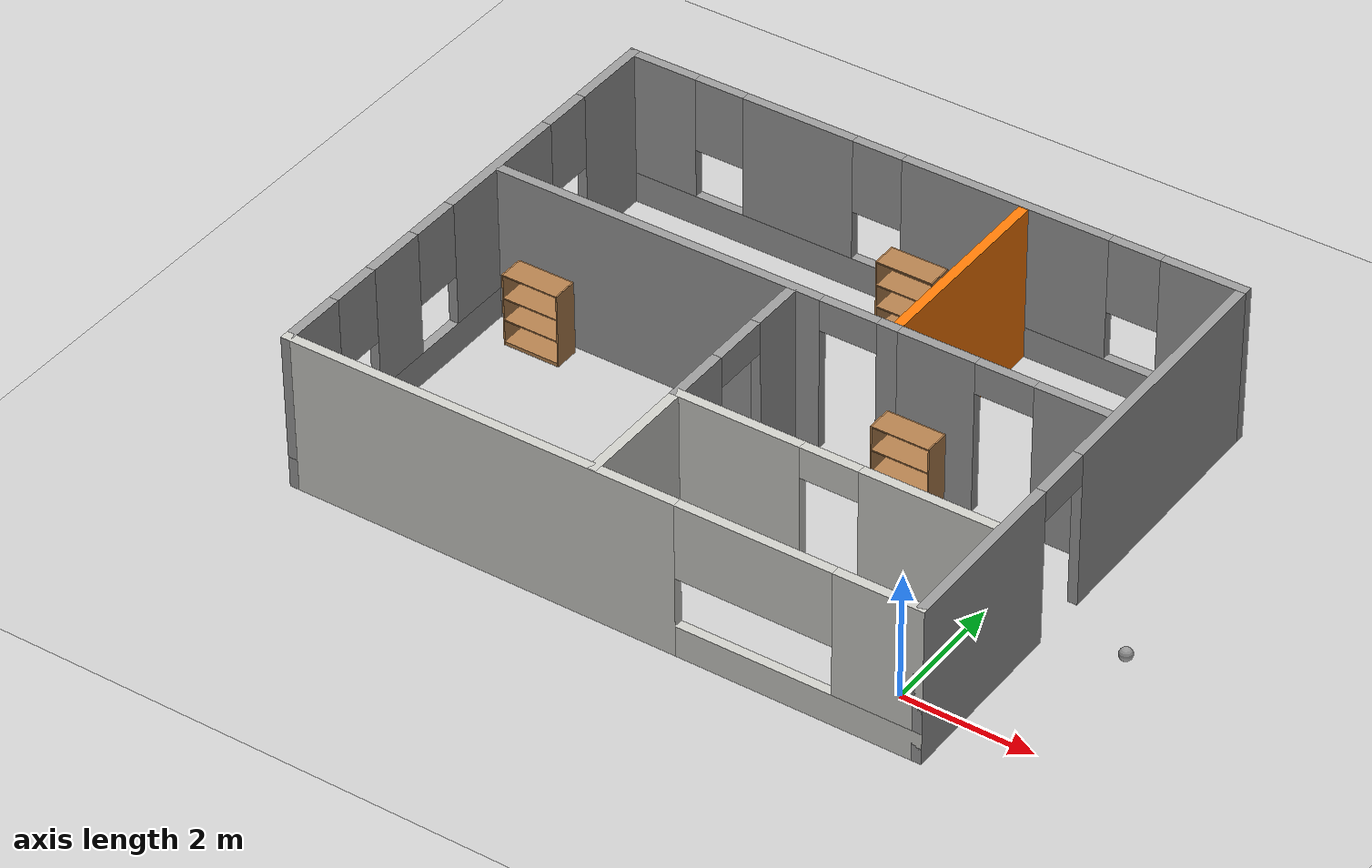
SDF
<sdf version="1.6">
 <world name="default">
  <plugin name="hello" filename="libhello.so"/>
  <gravity>0 0 -9.8</gravity>
  <magnetic_field>6e-06 2.3e-05 -4.2e-05</magnetic_field>
  <atmosphere type="adiabatic"/>
  <physics name="default_physics" default="0" type="ode">
   <max_step_size>0.001</max_step_size>
   <real_time_factor>1</real_time_factor>
   <real_time_update_rate>1000</real_time_update_rate>
  </physics>
  <scene><ambient>0.4 0.4 0.4 1</ambient><background>0.7 0.7 0.7 1</background><shadows>1</shadows></scene>
  <spherical_coordinates>
   <surface_model>EARTH_WGS84</surface_model>
   <latitude_deg>0</latitude_deg>
   <longitude_deg>0</longitude_deg>
   <elevation>0</elevation>
   <heading_deg>0</heading_deg>
  </spherical_coordinates>
  <model name="Hause">
   <pose>-4.0754 3.03863 0 0 -0 0</pose>
   <link name="Wall_11">
    <pose>-1.61949 0.663584 0 0 -0 3.14159</pose>
    <visual name="Wall_11_Visual_0">
     <pose>-3.08857 0 1.25 0 -0 0</pose>
     <geometry><box><size>0.322856 0.15 2.5</size></box></geometry>
     <material>
      <script><uri>file://media/materials/scripts/gazebo.material</uri><name>Gazebo/Grey</name></script>
      <ambient>1 1 1 1</ambient>
     </material>
     <meta><layer>0</layer></meta>
    </visual>
    <collision name="Wall_11_Collision_0">
     <geometry><box><size>0.322856 0.15 2.5</size></box></geometry>
     <pose>-3.08857 0 1.25 0 -0 0</pose>
    </collision>
    <visual name="Wall_11_Visual_1">
     <pose>0.611428 0 1.25 0 -0 0</pose>
     <geometry><box><size>5.27714 0.15 2.5</size></box></geometry>
     <material>
      <script><uri>file://media/materials/scripts/gazebo.material</uri><name>Gazebo/Grey</name></script>
      <ambient>1 1 1 1</ambient>
     </material>
     <meta><layer>0</layer></meta>
    </visual>
    <collision name="Wall_11_Collision_1">
     <geometry><box><size>5.27714 0.15 2.5</size></box></geometry>
     <pose>0.611428 0 1.25 0 -0 0</pose>
    </collision>
    <visual name="Wall_11_Visual_2">
     <pose>-2.47714 0 2.25 0 -0 0</pose>
     <geometry><box><size>0.9 0.15 0.5</size></box></geometry>
     <material>
      <script><uri>file://media/materials/scripts/gazebo.material</uri><name>Gazebo/Grey</name></script>
      <ambient>1 1 1 1</ambient>
     </material>
     <meta><layer>0</layer></meta>
    </visual>
    <collision name="Wall_11_Collision_2">
     <geometry><box><size>0.9 0.15 0.5</size></box></geometry>
     <pose>-2.47714 0 2.25 0 -0 0</pose>
    </collision>
   </link>
   <link name="Wall_13">
    <pose>2.38799 -2.06583 0 0 -0 3.14159</pose>
    <visual name="Wall_13_Visual_0">
     <pose>-1.46158 0 1.25 0 -0 0</pose>
     <geometry><box><size>2.07685 0.15 2.5</size></box></geometry>
     <material>
      <script><uri>file://media/materials/scripts/gazebo.material</uri><name>Gazebo/CeilingTiled</name></script>
      <ambient>1 1 1 1</ambient>
     </material>
     <meta><layer>0</layer></meta>
    </visual>
    <collision name="Wall_13_Collision_0">
     <geometry><box><size>2.07685 0.15 2.5</size></box></geometry>
     <pose>-1.46158 0 1.25 0 -0 0</pose>
    </collision>
    <visual name="Wall_13_Visual_1">
     <pose>1.48842 0 1.25 0 -0 0</pose>
     <geometry><box><size>2.02316 0.15 2.5</size></box></geometry>
     <material>
      <script><uri>file://media/materials/scripts/gazebo.material</uri><name>Gazebo/CeilingTiled</name></script>
      <ambient>1 1 1 1</ambient>
     </material>
     <meta><layer>0</layer></meta>
    </visual>
    <collision name="Wall_13_Collision_1">
     <geometry><box><size>2.02316 0.15 2.5</size></box></geometry>
     <pose>1.48842 0 1.25 0 -0 0</pose>
    </collision>
    <visual name="Wall_13_Visual_2">
     <pose>0.026845 0 2.25 0 -0 0</pose>
     <geometry><box><size>0.9 0.15 0.5</size></box></geometry>
     <material>
      <script><uri>file://media/materials/scripts/gazebo.material</uri><name>Gazebo/CeilingTiled</name></script>
      <ambient>1 1 1 1</ambient>
     </material>
     <meta><layer>0</layer></meta>
    </visual>
    <collision name="Wall_13_Collision_2">
     <geometry><box><size>0.9 0.15 0.5</size></box></geometry>
     <pose>0.026845 0 2.25 0 -0 0</pose>
    </collision>
   </link>
   <link name="Wall_14">
    <collision name="Wall_14_Collision">
     <geometry><box><size>2 0.15 2.5</size></box></geometry>
     <pose>0 0 1.25 0 -0 0</pose>
    </collision>
    <visual name="Wall_14_Visual">
     <pose>0 0 1.25 0 -0 0</pose>
     <geometry><box><size>2 0.15 2.5</size></box></geometry>
     <material>
      <script><uri>file://media/materials/scripts/gazebo.material</uri><name>Gazebo/CeilingTiled</name></script>
      <ambient>1 1 1 1</ambient>
     </material>
     <meta><layer>0</layer></meta>
    </visual>
    <pose>-0.037014 -2.99083 0 0 0 -1.5708</pose>
   </link>
   <link name="Wall_16">
    <pose>-0.037014 -0.765827 0 0 -0 1.5708</pose>
    <visual name="Wall_16_Visual_0">
     <pose>-0.880147 0 1.25 0 -0 0</pose>
     <geometry><box><size>0.989706 0.15 2.5</size></box></geometry>
     <material>
      <script><uri>file://media/materials/scripts/gazebo.material</uri><name>Gazebo/Grey</name></script>
      <ambient>1 1 1 1</ambient>
     </material>
     <meta><layer>0</layer></meta>
    </visual>
    <collision name="Wall_16_Collision_0">
     <geometry><box><size>0.989706 0.15 2.5</size></box></geometry>
     <pose>-0.880147 0 1.25 0 -0 0</pose>
    </collision>
    <visual name="Wall_16_Visual_1">
     <pose>0.944853 0 1.25 0 -0 0</pose>
     <geometry><box><size>0.860294 0.15 2.5</size></box></geometry>
     <material>
      <script><uri>file://media/materials/scripts/gazebo.material</uri><name>Gazebo/Grey</name></script>
      <ambient>1 1 1 1</ambient>
     </material>
     <meta><layer>0</layer></meta>
    </visual>
    <collision name="Wall_16_Collision_1">
     <geometry><box><size>0.860294 0.15 2.5</size></box></geometry>
     <pose>0.944853 0 1.25 0 -0 0</pose>
    </collision>
    <visual name="Wall_16_Visual_2">
     <pose>0.064706 0 2.25 0 -0 0</pose>
     <geometry><box><size>0.9 0.15 0.5</size></box></geometry>
     <material>
      <script><uri>file://media/materials/scripts/gazebo.material</uri><name>Gazebo/Grey</name></script>
      <ambient>1 1 1 1</ambient>
     </material>
     <meta><layer>0</layer></meta>
    </visual>
    <collision name="Wall_16_Collision_2">
     <geometry><box><size>0.9 0.15 0.5</size></box></geometry>
     <pose>0.064706 0 2.25 0 -0 0</pose>
    </collision>
   </link>
   <link name="Wall_3">
    <pose>-4.925 0 0 0 0 -1.5708</pose>
    <visual name="Wall_3_Visual_0">
     <pose>-3.3298 0 1.25 0 -0 0</pose>
     <geometry><box><size>1.3404 0.15 2.5</size></box></geometry>
     <material>
      <script><uri>file://media/materials/scripts/gazebo.material</uri><name>Gazebo/Grey</name></script>
      <ambient>1 1 1 1</ambient>
     </material>
     <meta><layer>0</layer></meta>
    </visual>
    <collision name="Wall_3_Collision_0">
     <geometry><box><size>1.3404 0.15 2.5</size></box></geometry>
     <pose>-3.3298 0 1.25 0 -0 0</pose>
    </collision>
    <visual name="Wall_3_Visual_1">
     <pose>0.670202 0 0.25 0 -0 0</pose>
     <geometry><box><size>6.6596 0.15 0.5</size></box></geometry>
     <material>
      <script><uri>file://media/materials/scripts/gazebo.material</uri><name>Gazebo/Grey</name></script>
      <ambient>1 1 1 1</ambient>
     </material>
     <meta><layer>0</layer></meta>
    </visual>
    <collision name="Wall_3_Collision_1">
     <geometry><box><size>6.6596 0.15 0.5</size></box></geometry>
     <pose>0.670202 0 0.25 0 -0 0</pose>
    </collision>
    <visual name="Wall_3_Visual_2">
     <pose>-0.732976 0 1.5 0 -0 0</pose>
     <geometry><box><size>2.25324 0.15 2</size></box></geometry>
     <material>
      <script><uri>file://media/materials/scripts/gazebo.material</uri><name>Gazebo/Grey</name></script>
      <ambient>1 1 1 1</ambient>
     </material>
     <meta><layer>0</layer></meta>
    </visual>
    <collision name="Wall_3_Collision_2">
     <geometry><box><size>2.25324 0.15 2</size></box></geometry>
     <pose>-0.732976 0 1.5 0 -0 0</pose>
    </collision>
    <visual name="Wall_3_Visual_3">
     <pose>1.67261 0 1.5 0 -0 0</pose>
     <geometry><box><size>0.957926 0.15 2</size></box></geometry>
     <material>
      <script><uri>file://media/materials/scripts/gazebo.material</uri><name>Gazebo/Grey</name></script>
      <ambient>1 1 1 1</ambient>
     </material>
     <meta><layer>0</layer></meta>
    </visual>
    <collision name="Wall_3_Collision_3">
     <geometry><box><size>0.957926 0.15 2</size></box></geometry>
     <pose>1.67261 0 1.5 0 -0 0</pose>
    </collision>
    <visual name="Wall_3_Visual_4">
     <pose>3.47579 0 1.5 0 -0 0</pose>
     <geometry><box><size>1.04843 0.15 2</size></box></geometry>
     <material>
      <script><uri>file://media/materials/scripts/gazebo.material</uri><name>Gazebo/Grey</name></script>
      <ambient>1 1 1 1</ambient>
     </material>
     <meta><layer>0</layer></meta>
    </visual>
    <collision name="Wall_3_Collision_4">
     <geometry><box><size>1.04843 0.15 2</size></box></geometry>
     <pose>3.47579 0 1.5 0 -0 0</pose>
    </collision>
    <visual name="Wall_3_Visual_5">
     <pose>-2.2596 0 1.9 0 -0 0</pose>
     <geometry><box><size>0.8 0.15 1.2</size></box></geometry>
     <material>
      <script><uri>file://media/materials/scripts/gazebo.material</uri><name>Gazebo/Grey</name></script>
      <ambient>1 1 1 1</ambient>
     </material>
     <meta><layer>0</layer></meta>
    </visual>
    <collision name="Wall_3_Collision_5">
     <geometry><box><size>0.8 0.15 1.2</size></box></geometry>
     <pose>-2.2596 0 1.9 0 -0 0</pose>
    </collision>
    <visual name="Wall_3_Visual_6">
     <pose>0.793644 0 1.9 0 -0 0</pose>
     <geometry><box><size>0.8 0.15 1.2</size></box></geometry>
     <material>
      <script><uri>file://media/materials/scripts/gazebo.material</uri><name>Gazebo/Grey</name></script>
      <ambient>1 1 1 1</ambient>
     </material>
     <meta><layer>0</layer></meta>
    </visual>
    <collision name="Wall_3_Collision_6">
     <geometry><box><size>0.8 0.15 1.2</size></box></geometry>
     <pose>0.793644 0 1.9 0 -0 0</pose>
    </collision>
    <visual name="Wall_3_Visual_7">
     <pose>2.55157 0 1.9 0 -0 0</pose>
     <geometry><box><size>0.8 0.15 1.2</size></box></geometry>
     <material>
      <script><uri>file://media/materials/scripts/gazebo.material</uri><name>Gazebo/Grey</name></script>
      <ambient>1 1 1 1</ambient>
     </material>
     <meta><layer>0</layer></meta>
    </visual>
    <collision name="Wall_3_Collision_7">
     <geometry><box><size>0.8 0.15 1.2</size></box></geometry>
     <pose>2.55157 0 1.9 0 -0 0</pose>
    </collision>
   </link>
   <link name="Wall_4">
    <pose>1e-06 -3.925 0 0 -0 0</pose>
    <visual name="Wall_4_Visual_0">
     <pose>-1.87795 0 1.25 0 -0 0</pose>
     <geometry><box><size>6.24409 0.15 2.5</size></box></geometry>
     <material>
      <script><uri>file://media/materials/scripts/gazebo.material</uri><name>Gazebo/CeilingTiled</name></script>
      <ambient>1 1 1 1</ambient>
     </material>
     <meta><layer>0</layer></meta>
    </visual>
    <collision name="Wall_4_Collision_0">
     <geometry><box><size>6.24409 0.15 2.5</size></box></geometry>
     <pose>-1.87795 0 1.25 0 -0 0</pose>
    </collision>
    <visual name="Wall_4_Visual_1">
     <pose>3.12205 0 0.25 0 -0 0</pose>
     <geometry><box><size>3.75591 0.15 0.5</size></box></geometry>
     <material>
      <script><uri>file://media/materials/scripts/gazebo.material</uri><name>Gazebo/CeilingTiled</name></script>
      <ambient>1 1 1 1</ambient>
     </material>
     <meta><layer>0</layer></meta>
    </visual>
    <collision name="Wall_4_Collision_1">
     <geometry><box><size>3.75591 0.15 0.5</size></box></geometry>
     <pose>3.12205 0 0.25 0 -0 0</pose>
    </collision>
    <visual name="Wall_4_Visual_2">
     <pose>4.32005 0 1.5 0 -0 0</pose>
     <geometry><box><size>1.3599 0.15 2</size></box></geometry>
     <material>
      <script><uri>file://media/materials/scripts/gazebo.material</uri><name>Gazebo/CeilingTiled</name></script>
      <ambient>1 1 1 1</ambient>
     </material>
     <meta><layer>0</layer></meta>
    </visual>
    <collision name="Wall_4_Collision_2">
     <geometry><box><size>1.3599 0.15 2</size></box></geometry>
     <pose>4.32005 0 1.5 0 -0 0</pose>
    </collision>
    <visual name="Wall_4_Visual_3">
     <pose>2.4421 0 1.9 0 -0 0</pose>
     <geometry><box><size>2.39601 0.15 1.2</size></box></geometry>
     <material>
      <script><uri>file://media/materials/scripts/gazebo.material</uri><name>Gazebo/CeilingTiled</name></script>
      <ambient>1 1 1 1</ambient>
     </material>
     <meta><layer>0</layer></meta>
    </visual>
    <collision name="Wall_4_Collision_3">
     <geometry><box><size>2.39601 0.15 1.2</size></box></geometry>
     <pose>2.4421 0 1.9 0 -0 0</pose>
    </collision>
   </link>
   <link name="Wall_5">
    <pose>4.925 0 0 0 -0 1.5708</pose>
    <visual name="Wall_5_Visual_0">
     <pose>-2.57556 0 1.25 0 -0 0</pose>
     <geometry><box><size>2.84888 0.15 2.5</size></box></geometry>
     <material>
      <script><uri>file://media/materials/scripts/gazebo.material</uri><name>Gazebo/Grey</name></script>
      <ambient>1 1 1 1</ambient>
     </material>
     <meta><layer>0</layer></meta>
    </visual>
    <collision name="Wall_5_Collision_0">
     <geometry><box><size>2.84888 0.15 2.5</size></box></geometry>
     <pose>-2.57556 0 1.25 0 -0 0</pose>
    </collision>
    <visual name="Wall_5_Visual_1">
     <pose>1.87444 0 1.25 0 -0 0</pose>
     <geometry><box><size>4.25112 0.15 2.5</size></box></geometry>
     <material>
      <script><uri>file://media/materials/scripts/gazebo.material</uri><name>Gazebo/Grey</name></script>
      <ambient>1 1 1 1</ambient>
     </material>
     <meta><layer>0</layer></meta>
    </visual>
    <collision name="Wall_5_Collision_1">
     <geometry><box><size>4.25112 0.15 2.5</size></box></geometry>
     <pose>1.87444 0 1.25 0 -0 0</pose>
    </collision>
    <visual name="Wall_5_Visual_2">
     <pose>-0.701122 0 2.25 0 -0 0</pose>
     <geometry><box><size>0.9 0.15 0.5</size></box></geometry>
     <material>
      <script><uri>file://media/materials/scripts/gazebo.material</uri><name>Gazebo/Grey</name></script>
      <ambient>1 1 1 1</ambient>
     </material>
     <meta><layer>0</layer></meta>
    </visual>
    <collision name="Wall_5_Collision_2">
     <geometry><box><size>0.9 0.15 0.5</size></box></geometry>
     <pose>-0.701122 0 2.25 0 -0 0</pose>
    </collision>
   </link>
   <link name="Wall_6">
    <pose>1e-06 3.925 0 0 -0 3.14159</pose>
    <visual name="Wall_6_Visual_0">
     <pose>-4.34318 0 1.25 0 -0 0</pose>
     <geometry><box><size>1.31363 0.15 2.5</size></box></geometry>
     <material>
      <script><uri>file://media/materials/scripts/gazebo.material</uri><name>Gazebo/Grey</name></script>
      <ambient>1 1 1 1</ambient>
     </material>
     <meta><layer>0</layer></meta>
    </visual>
    <collision name="Wall_6_Collision_0">
     <geometry><box><size>1.31363 0.15 2.5</size></box></geometry>
     <pose>-4.34318 0 1.25 0 -0 0</pose>
    </collision>
    <visual name="Wall_6_Visual_1">
     <pose>0.656817 0 0.25 0 -0 0</pose>
     <geometry><box><size>8.68637 0.15 0.5</size></box></geometry>
     <material>
      <script><uri>file://media/materials/scripts/gazebo.material</uri><name>Gazebo/Grey</name></script>
      <ambient>1 1 1 1</ambient>
     </material>
     <meta><layer>0</layer></meta>
    </visual>
    <collision name="Wall_6_Collision_1">
     <geometry><box><size>8.68637 0.15 0.5</size></box></geometry>
     <pose>0.656817 0 0.25 0 -0 0</pose>
    </collision>
    <visual name="Wall_6_Visual_2">
     <pose>-1.23931 0 1.5 0 -0 0</pose>
     <geometry><box><size>3.29412 0.15 2</size></box></geometry>
     <material>
      <script><uri>file://media/materials/scripts/gazebo.material</uri><name>Gazebo/Grey</name></script>
      <ambient>1 1 1 1</ambient>
     </material>
     <meta><layer>0</layer></meta>
    </visual>
    <collision name="Wall_6_Collision_2">
     <geometry><box><size>3.29412 0.15 2</size></box></geometry>
     <pose>-1.23931 0 1.5 0 -0 0</pose>
    </collision>
    <visual name="Wall_6_Visual_3">
     <pose>2.11463 0 1.5 0 -0 0</pose>
     <geometry><box><size>1.81376 0.15 2</size></box></geometry>
     <material>
      <script><uri>file://media/materials/scripts/gazebo.material</uri><name>Gazebo/Grey</name></script>
      <ambient>1 1 1 1</ambient>
     </material>
     <meta><layer>0</layer></meta>
    </visual>
    <collision name="Wall_6_Collision_3">
     <geometry><box><size>1.81376 0.15 2</size></box></geometry>
     <pose>2.11463 0 1.5 0 -0 0</pose>
    </collision>
    <visual name="Wall_6_Visual_4">
     <pose>4.41076 0 1.5 0 -0 0</pose>
     <geometry><box><size>1.17849 0.15 2</size></box></geometry>
     <material>
      <script><uri>file://media/materials/scripts/gazebo.material</uri><name>Gazebo/Grey</name></script>
      <ambient>1 1 1 1</ambient>
     </material>
     <meta><layer>0</layer></meta>
    </visual>
    <collision name="Wall_6_Collision_4">
     <geometry><box><size>1.17849 0.15 2</size></box></geometry>
     <pose>4.41076 0 1.5 0 -0 0</pose>
    </collision>
    <visual name="Wall_6_Visual_5">
     <pose>-3.28637 0 1.9 0 -0 0</pose>
     <geometry><box><size>0.8 0.15 1.2</size></box></geometry>
     <material>
      <script><uri>file://media/materials/scripts/gazebo.material</uri><name>Gazebo/Grey</name></script>
      <ambient>1 1 1 1</ambient>
     </material>
     <meta><layer>0</layer></meta>
    </visual>
    <collision name="Wall_6_Collision_5">
     <geometry><box><size>0.8 0.15 1.2</size></box></geometry>
     <pose>-3.28637 0 1.9 0 -0 0</pose>
    </collision>
    <visual name="Wall_6_Visual_6">
     <pose>0.807752 0 1.9 0 -0 0</pose>
     <geometry><box><size>0.8 0.15 1.2</size></box></geometry>
     <material>
      <script><uri>file://media/materials/scripts/gazebo.material</uri><name>Gazebo/Grey</name></script>
      <ambient>1 1 1 1</ambient>
     </material>
     <meta><layer>0</layer></meta>
    </visual>
    <collision name="Wall_6_Collision_6">
     <geometry><box><size>0.8 0.15 1.2</size></box></geometry>
     <pose>0.807752 0 1.9 0 -0 0</pose>
    </collision>
    <visual name="Wall_6_Visual_7">
     <pose>3.42151 0 1.9 0 -0 0</pose>
     <geometry><box><size>0.8 0.15 1.2</size></box></geometry>
     <material>
      <script><uri>file://media/materials/scripts/gazebo.material</uri><name>Gazebo/Grey</name></script>
      <ambient>1 1 1 1</ambient>
     </material>
     <meta><layer>0</layer></meta>
    </visual>
    <collision name="Wall_6_Collision_7">
     <geometry><box><size>0.8 0.15 1.2</size></box></geometry>
     <pose>3.42151 0 1.9 0 -0 0</pose>
    </collision>
   </link>
   <link name="Wall_8">
    <pose>3.23051 0.663584 0 0 -0 3.14159</pose>
    <visual name="Wall_8_Visual_0">
     <pose>-1.12793 0 1.25 0 -0 0</pose>
     <geometry><box><size>1.24414 0.15 2.5</size></box></geometry>
     <material>
      <script><uri>file://media/materials/scripts/gazebo.material</uri><name>Gazebo/Grey</name></script>
      <ambient>1 1 1 1</ambient>
     </material>
     <meta><layer>0</layer></meta>
    </visual>
    <collision name="Wall_8_Collision_0">
     <geometry><box><size>1.24414 0.15 2.5</size></box></geometry>
     <pose>-1.12793 0 1.25 0 -0 0</pose>
    </collision>
    <visual name="Wall_8_Visual_1">
     <pose>1.07207 0 1.25 0 -0 0</pose>
     <geometry><box><size>1.35586 0.15 2.5</size></box></geometry>
     <material>
      <script><uri>file://media/materials/scripts/gazebo.material</uri><name>Gazebo/Grey</name></script>
      <ambient>1 1 1 1</ambient>
     </material>
     <meta><layer>0</layer></meta>
    </visual>
    <collision name="Wall_8_Collision_1">
     <geometry><box><size>1.35586 0.15 2.5</size></box></geometry>
     <pose>1.07207 0 1.25 0 -0 0</pose>
    </collision>
    <visual name="Wall_8_Visual_2">
     <pose>-0.055858 0 2.25 0 -0 0</pose>
     <geometry><box><size>0.9 0.15 0.5</size></box></geometry>
     <material>
      <script><uri>file://media/materials/scripts/gazebo.material</uri><name>Gazebo/Grey</name></script>
      <ambient>1 1 1 1</ambient>
     </material>
     <meta><layer>0</layer></meta>
    </visual>
    <collision name="Wall_8_Collision_2">
     <geometry><box><size>0.9 0.15 0.5</size></box></geometry>
     <pose>-0.055858 0 2.25 0 -0 0</pose>
    </collision>
   </link>
   <link name="Wall_9">
    <collision name="Wall_9_Collision">
     <geometry><box><size>3.25 0.15 2.5</size></box></geometry>
     <pose>0 0 1.25 0 -0 0</pose>
    </collision>
    <visual name="Wall_9_Visual">
     <pose>0 0 1.25 0 -0 0</pose>
     <geometry><box><size>3.25 0.15 2.5</size></box></geometry>
     <material>
      <script><uri>file://media/materials/scripts/gazebo.material</uri><name>Gazebo/Grey</name></script>
      <ambient>0.996078 0.47451 0.0196078 1</ambient>
     </material>
     <meta><layer>0</layer></meta>
    </visual>
    <pose>1.55551 2.21358 0 0 -0 1.5708</pose>
   </link>
   <static>1</static>
  </model>
  <light name="user_directional_light_0" type="directional">
   <pose>-14.3375 2.53859 1 0 -0 0</pose>
   <diffuse>0.5 0.5 0.5 1</diffuse>
   <specular>0.1 0.1 0.1 1</specular>
   <direction>0.1 0.1 -0.9</direction>
   <attenuation>
    <range>20</range>
    <constant>0.5</constant>
    <linear>0.01</linear>
    <quadratic>0.001</quadratic>
   </attenuation>
  </light>
  <model name="bookshelf">
   <static>1</static>
   <link name="link">
    <inertial><mass>1</mass></inertial>
    <collision name="back">
     <pose>0 0.005 0.6 0 -0 0</pose>
     <geometry><box><size>0.9 0.01 1.2</size></box></geometry>
    </collision>
    <visual name="visual1">
     <pose>0 0.005 0.6 0 -0 0</pose>
     <geometry><box><size>0.9 0.01 1.2</size></box></geometry>
     <material>
      <script><uri>file://media/materials/scripts/gazebo.material</uri><name>Gazebo/Wood</name></script>
     </material>
    </visual>
    <collision name="left_side">
     <pose>0.45 -0.195 0.6 0 -0 0</pose>
     <geometry><box><size>0.02 0.4 1.2</size></box></geometry>
    </collision>
    <visual name="visual2">
     <pose>0.45 -0.195 0.6 0 -0 0</pose>
     <geometry><box><size>0.02 0.4 1.2</size></box></geometry>
     <material>
      <script><uri>file://media/materials/scripts/gazebo.material</uri><name>Gazebo/Wood</name></script>
     </material>
    </visual>
    <collision name="right_side">
     <pose>-0.45 -0.195 0.6 0 -0 0</pose>
     <geometry><box><size>0.02 0.4 1.2</size></box></geometry>
    </collision>
    <visual name="visual3">
     <pose>-0.45 -0.195 0.6 0 -0 0</pose>
     <geometry><box><size>0.02 0.4 1.2</size></box></geometry>
     <material>
      <script><uri>file://media/materials/scripts/gazebo.material</uri><name>Gazebo/Wood</name></script>
     </material>
    </visual>
    <collision name="bottom">
     <pose>0 -0.195 0.03 0 -0 0</pose>
     <geometry><box><size>0.88 0.4 0.06</size></box></geometry>
    </collision>
    <visual name="visual4">
     <pose>0 -0.195 0.03 0 -0 0</pose>
     <geometry><box><size>0.88 0.4 0.06</size></box></geometry>
     <material>
      <script><uri>file://media/materials/scripts/gazebo.material</uri><name>Gazebo/Wood</name></script>
     </material>
    </visual>
    <collision name="top">
     <pose>0 -0.195 1.19 0 -0 0</pose>
     <geometry><box><size>0.88 0.4 0.02</size></box></geometry>
    </collision>
    <visual name="visual5">
     <pose>0 -0.195 1.19 0 -0 0</pose>
     <geometry><box><size>0.88 0.4 0.02</size></box></geometry>
     <material>
      <script><uri>file://media/materials/scripts/gazebo.material</uri><name>Gazebo/Wood</name></script>
     </material>
    </visual>
    <collision name="low_shelf">
     <pose>0 -0.195 0.43 0 -0 0</pose>
     <geometry><box><size>0.88 0.4 0.02</size></box></geometry>
    </collision>
    <visual name="visual6">
     <pose>0 -0.195 0.43 0 -0 0</pose>
     <geometry><box><size>0.88 0.4 0.02</size></box></geometry>
     <material>
      <script><uri>file://media/materials/scripts/gazebo.material</uri><name>Gazebo/Wood</name></script>
     </material>
    </visual>
    <collision name="high_shelf">
     <pose>0 -0.195 0.8 0 -0 0</pose>
     <geometry><box><size>0.88 0.4 0.02</size></box></geometry>
    </collision>
    <visual name="visual7">
     <pose>0 -0.195 0.8 0 -0 0</pose>
     <geometry><box><size>0.88 0.4 0.02</size></box></geometry>
     <material>
      <script><uri>file://media/materials/scripts/gazebo.material</uri><name>Gazebo/Wood</name></script>
     </material>
    </visual>
   </link>
   <pose>-3.99804 6.62324 0 0 -0 0</pose>
  </model>
  <model name="ground_plane">
   <static>1</static>
   <link name="link">
    <collision name="collision">
     <geometry><plane><normal>0 0 1</normal><size>100 100</size></plane></geometry>
     <surface>
      <contact><collide_bitmask>65535</collide_bitmask></contact>
      <friction><ode><mu>100</mu><mu2>50</mu2></ode></friction>
     </surface>
    </collision>
    <visual name="visual">
     <cast_shadows>0</cast_shadows>
     <geometry><plane><normal>0 0 1</normal><size>100 100</size></plane></geometry>
     <material>
      <script><uri>file://media/materials/scripts/gazebo.material</uri><name>Gazebo/Grey</name></script>
     </material>
    </visual>
   </link>
   <pose>-1.06069 -2.17733 0 0 -0 0</pose>
  </model>
  <model name="my_ball">
   <link name="link_0">
    <inertial>
     <mass>1</mass>
     <inertia><ixx>0.1</ixx><ixy>0</ixy><ixz>0</ixz><iyy>0.1</iyy><iyz>0</iyz><izz>0.1</izz></inertia>
    </inertial>
    <visual name="visual">
     <geometry><sphere><radius>0.1</radius></sphere></geometry>
     <material>
      <lighting>1</lighting>
      <script><uri>file://media/materials/scripts/gazebo.material</uri><name>Gazebo/Grey</name></script>
      <shader type="pixel"><normal_map>__default__</normal_map></shader>
      <ambient>1 1 1 1</ambient>
      <diffuse>1 1 1 1</diffuse>
      <specular>1 1 1 1</specular>
      <emissive>1 1 1 1</emissive>
     </material>
    </visual>
    <collision name="collision">
     <geometry><sphere><radius>0.1</radius></sphere></geometry>
     <surface>
      <friction>
       <ode><mu>1</mu><mu2>1</mu2><fdir1>0 0 0</fdir1><slip1>0</slip1><slip2>0</slip2></ode>
       <torsional>
        <coefficient>1</coefficient>
        <patch_radius>0</patch_radius>
        <surface_radius>0</surface_radius>
        <use_patch_radius>1</use_patch_radius>
        <ode><slip>0</slip></ode>
       </torsional>
      </friction>
      <bounce><restitution_coefficient>0</restitution_coefficient><threshold>1e+06</threshold></bounce>
      <contact>
       <collide_without_contact>0</collide_without_contact>
       <collide_without_contact_bitmask>1</collide_without_contact_bitmask>
       <collide_bitmask>1</collide_bitmask>
       <ode>
        <soft_cfm>0</soft_cfm>
        <soft_erp>0.2</soft_erp>
        <kp>1e+13</kp>
        <kd>1</kd>
        <max_vel>0.01</max_vel>
        <min_depth>0</min_depth>
       </ode>
       <bullet>
        <split_impulse>1</split_impulse>
        <split_impulse_penetration_threshold>-0.01</split_impulse_penetration_threshold>
        <soft_cfm>0</soft_cfm>
        <soft_erp>0.2</soft_erp>
        <kp>1e+13</kp>
        <kd>1</kd>
       </bullet>
      </contact>
     </surface>
    </collision>
   </link>
   <static>0</static>
   <pose>2.01582 2.206 0.1 0 -0 0</pose>
  </model>
  <model name="cabinet">
   <static>1</static>
   <link name="cabinet_bottom_plate">
    <inertial>
     <pose>0 0 -1 0 -0 0</pose>
     <inertia><ixx>2.05</ixx><ixy>0</ixy><ixz>0</ixz><iyy>2.05</iyy><iyz>0</iyz><izz>2.05</izz></inertia>
     <mass>25</mass>
    </inertial>
    <collision name="cabinet_bottom_plate_geom">
     <pose>0 0 0.01 0 -0 0</pose>
     <geometry><box><size>0.45 0.45 0.02</size></box></geometry>
    </collision>
    <visual name="cabinet_bottom_plate_geom_visual">
     <pose>0 0 0.01 0 -0 0</pose>
     <geometry><box><size>0.45 0.45 0.02</size></box></geometry>
     <material>
      <script><uri>file://media/materials/scripts/gazebo.material</uri><name>Gazebo/Wood</name></script>
     </material>
    </visual>
    <collision name="cabinet_bottom_plate_geom_cabinet_back_plate">
     <pose>0.235 0 0.51 0 -0 0</pose>
     <geometry><box><size>0.02 0.45 1.02</size></box></geometry>
    </collision>
    <visual name="cabinet_bottom_plate_geom_cabinet_back_plate_visual">
     <pose>0.235 0 0.51 0 -0 0</pose>
     <geometry><box><size>0.02 0.45 1.02</size></box></geometry>
     <material>
      <script><uri>file://media/materials/scripts/gazebo.material</uri><name>Gazebo/Wood</name></script>
     </material>
    </visual>
    <collision name="cabinet_bottom_plate_geom_cabinet_left_plate">
     <pose>0 0.235 0.51 0 -0 0</pose>
     <geometry><box><size>0.45 0.02 1.02</size></box></geometry>
    </collision>
    <visual name="cabinet_bottom_plate_geom_cabinet_left_plate_visual">
     <pose>0 0.235 0.51 0 -0 0</pose>
     <geometry><box><size>0.45 0.02 1.02</size></box></geometry>
     <material>
      <script><uri>file://media/materials/scripts/gazebo.material</uri><name>Gazebo/Wood</name></script>
     </material>
    </visual>
    <collision name="cabinet_bottom_plate_geom_cabinet_middle_plate">
     <pose>0 0 0.51 0 -0 0</pose>
     <geometry><box><size>0.45 0.45 0.02</size></box></geometry>
    </collision>
    <visual name="cabinet_bottom_plate_geom_cabinet_middle_plate_visual">
     <pose>0 0 0.51 0 -0 0</pose>
     <geometry><box><size>0.45 0.45 0.02</size></box></geometry>
     <material>
      <script><uri>file://media/materials/scripts/gazebo.material</uri><name>Gazebo/Wood</name></script>
     </material>
    </visual>
    <collision name="cabinet_bottom_plate_geom_cabinet_right_plate">
     <pose>0 -0.235 0.51 0 -0 0</pose>
     <geometry><box><size>0.45 0.02 1.02</size></box></geometry>
    </collision>
    <visual name="cabinet_bottom_plate_geom_cabinet_right_plate_visual">
     <pose>0 -0.235 0.51 0 -0 0</pose>
     <geometry><box><size>0.45 0.02 1.02</size></box></geometry>
     <material>
      <script><uri>file://media/materials/scripts/gazebo.material</uri><name>Gazebo/Wood</name></script>
     </material>
    </visual>
    <collision name="cabinet_bottom_plate_geom_cabinet_top_plate">
     <pose>0 0 1.01 0 -0 0</pose>
     <geometry><box><size>0.45 0.45 0.02</size></box></geometry>
    </collision>
    <visual name="cabinet_bottom_plate_geom_cabinet_top_plate_visual">
     <pose>0 0 1.01 0 -0 0</pose>
     <geometry><box><size>0.45 0.45 0.02</size></box></geometry>
     <material>
      <script><uri>file://media/materials/scripts/gazebo.material</uri><name>Gazebo/Wood</name></script>
     </material>
    </visual>
   </link>
   <pose>0.542818 6.56661 0 0 -0 0</pose>
  </model>
  <model name="bookshelf_0">
   <static>1</static>
   <link name="link">
    <inertial><mass>1</mass></inertial>
    <collision name="back">
     <pose>0 0.005 0.6 0 -0 0</pose>
     <geometry><box><size>0.9 0.01 1.2</size></box></geometry>
    </collision>
    <visual name="visual1">
     <pose>0 0.005 0.6 0 -0 0</pose>
     <geometry><box><size>0.9 0.01 1.2</size></box></geometry>
     <material>
      <script><uri>file://media/materials/scripts/gazebo.material</uri><name>Gazebo/Wood</name></script>
     </material>
    </visual>
    <collision name="left_side">
     <pose>0.45 -0.195 0.6 0 -0 0</pose>
     <geometry><box><size>0.02 0.4 1.2</size></box></geometry>
    </collision>
    <visual name="visual2">
     <pose>0.45 -0.195 0.6 0 -0 0</pose>
     <geometry><box><size>0.02 0.4 1.2</size></box></geometry>
     <material>
      <script><uri>file://media/materials/scripts/gazebo.material</uri><name>Gazebo/Wood</name></script>
     </material>
    </visual>
    <collision name="right_side">
     <pose>-0.45 -0.195 0.6 0 -0 0</pose>
     <geometry><box><size>0.02 0.4 1.2</size></box></geometry>
    </collision>
    <visual name="visual3">
     <pose>-0.45 -0.195 0.6 0 -0 0</pose>
     <geometry><box><size>0.02 0.4 1.2</size></box></geometry>
     <material>
      <script><uri>file://media/materials/scripts/gazebo.material</uri><name>Gazebo/Wood</name></script>
     </material>
    </visual>
    <collision name="bottom">
     <pose>0 -0.195 0.03 0 -0 0</pose>
     <geometry><box><size>0.88 0.4 0.06</size></box></geometry>
    </collision>
    <visual name="visual4">
     <pose>0 -0.195 0.03 0 -0 0</pose>
     <geometry><box><size>0.88 0.4 0.06</size></box></geometry>
     <material>
      <script><uri>file://media/materials/scripts/gazebo.material</uri><name>Gazebo/Wood</name></script>
     </material>
    </visual>
    <collision name="top">
     <pose>0 -0.195 1.19 0 -0 0</pose>
     <geometry><box><size>0.88 0.4 0.02</size></box></geometry>
    </collision>
    <visual name="visual5">
     <pose>0 -0.195 1.19 0 -0 0</pose>
     <geometry><box><size>0.88 0.4 0.02</size></box></geometry>
     <material>
      <script><uri>file://media/materials/scripts/gazebo.material</uri><name>Gazebo/Wood</name></script>
     </material>
    </visual>
    <collision name="low_shelf">
     <pose>0 -0.195 0.43 0 -0 0</pose>
     <geometry><box><size>0.88 0.4 0.02</size></box></geometry>
    </collision>
    <visual name="visual6">
     <pose>0 -0.195 0.43 0 -0 0</pose>
     <geometry><box><size>0.88 0.4 0.02</size></box></geometry>
     <material>
      <script><uri>file://media/materials/scripts/gazebo.material</uri><name>Gazebo/Wood</name></script>
     </material>
    </visual>
    <collision name="high_shelf">
     <pose>0 -0.195 0.8 0 -0 0</pose>
     <geometry><box><size>0.88 0.4 0.02</size></box></geometry>
    </collision>
    <visual name="visual7">
     <pose>0 -0.195 0.8 0 -0 0</pose>
     <geometry><box><size>0.88 0.4 0.02</size></box></geometry>
     <material>
      <script><uri>file://media/materials/scripts/gazebo.material</uri><name>Gazebo/Wood</name></script>
     </material>
    </visual>
   </link>
   <pose>-8.06496 3.52648 0 0 -0 0</pose>
  </model>
  <model name="bookshelf_1">
   <static>1</static>
   <link name="link">
    <inertial><mass>1</mass></inertial>
    <collision name="back">
     <pose>0 0.005 0.6 0 -0 0</pose>
     <geometry><box><size>0.9 0.01 1.2</size></box></geometry>
    </collision>
    <visual name="visual1">
     <pose>0 0.005 0.6 0 -0 0</pose>
     <geometry><box><size>0.9 0.01 1.2</size></box></geometry>
     <material>
      <script><uri>file://media/materials/scripts/gazebo.material</uri><name>Gazebo/Wood</name></script>
     </material>
    </visual>
    <collision name="left_side">
     <pose>0.45 -0.195 0.6 0 -0 0</pose>
     <geometry><box><size>0.02 0.4 1.2</size></box></geometry>
    </collision>
    <visual name="visual2">
     <pose>0.45 -0.195 0.6 0 -0 0</pose>
     <geometry><box><size>0.02 0.4 1.2</size></box></geometry>
     <material>
      <script><uri>file://media/materials/scripts/gazebo.material</uri><name>Gazebo/Wood</name></script>
     </material>
    </visual>
    <collision name="right_side">
     <pose>-0.45 -0.195 0.6 0 -0 0</pose>
     <geometry><box><size>0.02 0.4 1.2</size></box></geometry>
    </collision>
    <visual name="visual3">
     <pose>-0.45 -0.195 0.6 0 -0 0</pose>
     <geometry><box><size>0.02 0.4 1.2</size></box></geometry>
     <material>
      <script><uri>file://media/materials/scripts/gazebo.material</uri><name>Gazebo/Wood</name></script>
     </material>
    </visual>
    <collision name="bottom">
     <pose>0 -0.195 0.03 0 -0 0</pose>
     <geometry><box><size>0.88 0.4 0.06</size></box></geometry>
    </collision>
    <visual name="visual4">
     <pose>0 -0.195 0.03 0 -0 0</pose>
     <geometry><box><size>0.88 0.4 0.06</size></box></geometry>
     <material>
      <script><uri>file://media/materials/scripts/gazebo.material</uri><name>Gazebo/Wood</name></script>
     </material>
    </visual>
    <collision name="top">
     <pose>0 -0.195 1.19 0 -0 0</pose>
     <geometry><box><size>0.88 0.4 0.02</size></box></geometry>
    </collision>
    <visual name="visual5">
     <pose>0 -0.195 1.19 0 -0 0</pose>
     <geometry><box><size>0.88 0.4 0.02</size></box></geometry>
     <material>
      <script><uri>file://media/materials/scripts/gazebo.material</uri><name>Gazebo/Wood</name></script>
     </material>
    </visual>
    <collision name="low_shelf">
     <pose>0 -0.195 0.43 0 -0 0</pose>
     <geometry><box><size>0.88 0.4 0.02</size></box></geometry>
    </collision>
    <visual name="visual6">
     <pose>0 -0.195 0.43 0 -0 0</pose>
     <geometry><box><size>0.88 0.4 0.02</size></box></geometry>
     <material>
      <script><uri>file://media/materials/scripts/gazebo.material</uri><name>Gazebo/Wood</name></script>
     </material>
    </visual>
    <collision name="high_shelf">
     <pose>0 -0.195 0.8 0 -0 0</pose>
     <geometry><box><size>0.88 0.4 0.02</size></box></geometry>
    </collision>
    <visual name="visual7">
     <pose>0 -0.195 0.8 0 -0 0</pose>
     <geometry><box><size>0.88 0.4 0.02</size></box></geometry>
     <material>
      <script><uri>file://media/materials/scripts/gazebo.material</uri><name>Gazebo/Wood</name></script>
     </material>
    </visual>
   </link>
   <pose>-2.07738 3.54988 0 0 -0 0</pose>
  </model>
  <plugin name="collision_map_creator" filename="libcollision_map_creator.so"/>
 </world>
</sdf>
